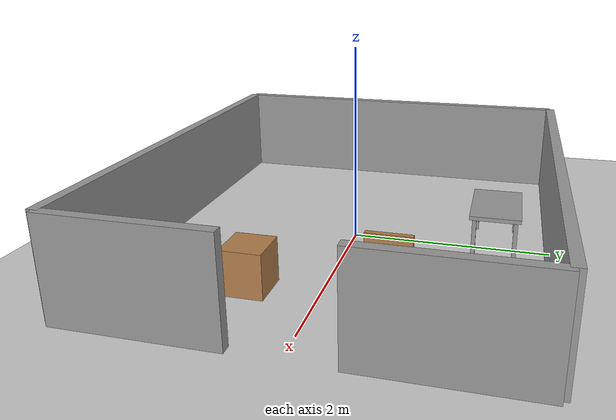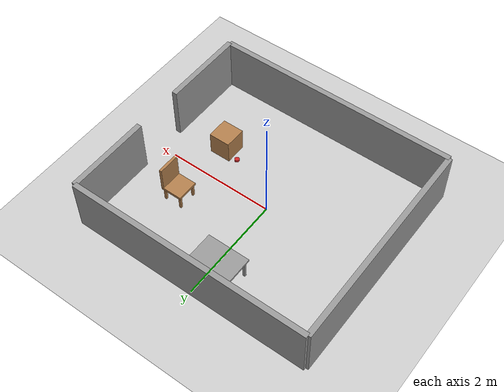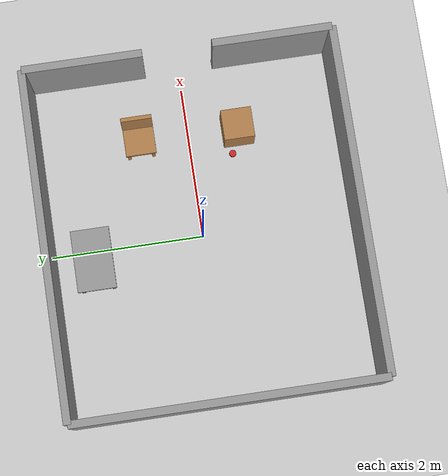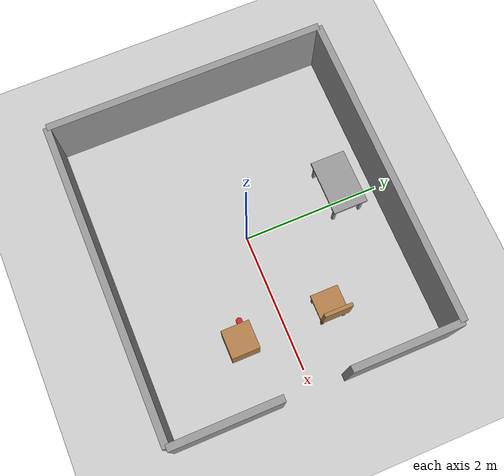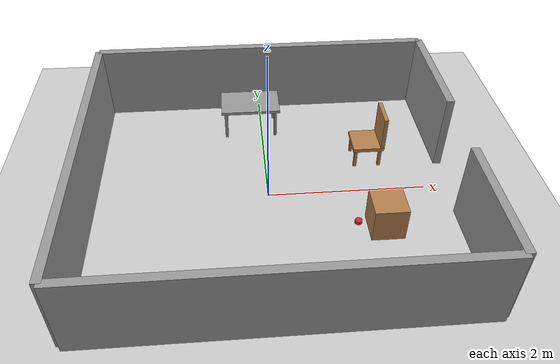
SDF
<?xml version="1.0" ?>
<sdf version="1.6">
  <world name="semantic_room">
    <include><uri>model://ground_plane</uri></include>
    <include><uri>model://sun</uri></include>

    <scene>
      <ambient>0.32 0.32 0.32 1</ambient>
      <background>0.68 0.72 0.76 1</background>
      <shadows>0</shadows>
    </scene>
    <light name="ceiling" type="point">
      <pose>0.3 0 2.4 0 0 0</pose>
      <diffuse>0.4 0.4 0.38 1</diffuse>
      <specular>0.04 0.04 0.04 1</specular>
      <attenuation>
        <range>8</range>
        <constant>0.55</constant>
        <linear>0.18</linear>
        <quadratic>0.05</quadratic>
      </attenuation>
      <cast_shadows>0</cast_shadows>
    </light>

    <physics type="ode">
      <max_step_size>0.001</max_step_size>
      <real_time_update_rate>1000</real_time_update_rate>
      <real_time_factor>1</real_time_factor>
    </physics>

    <gui fullscreen="0">
      <camera name="user_camera">
        <pose>0.2 -5.2 3.2 0 0.55 1.5708</pose>
      </camera>
    </gui>

    <model name="walls">
      <static>true</static>
      <pose>0 0 0 0 0 0</pose>
      <link name="link">
        <visual name="north"><pose>0.05 2.0 0.5 0 0 0</pose><geometry><box><size>4.5 0.1 1.0</size></box></geometry><material><script><uri>file://media/materials/scripts/gazebo.material</uri><name>Gazebo/Grey</name></script></material></visual>
        <collision name="north"><pose>0.05 2.0 0.5 0 0 0</pose><geometry><box><size>4.5 0.1 1.0</size></box></geometry></collision>
        <visual name="south"><pose>0.05 -2.0 0.5 0 0 0</pose><geometry><box><size>4.5 0.1 1.0</size></box></geometry><material><script><uri>file://media/materials/scripts/gazebo.material</uri><name>Gazebo/Grey</name></script></material></visual>
        <collision name="south"><pose>0.05 -2.0 0.5 0 0 0</pose><geometry><box><size>4.5 0.1 1.0</size></box></geometry></collision>
        <visual name="west"><pose>-2.2 0 0.5 0 0 0</pose><geometry><box><size>0.1 4.0 1.0</size></box></geometry><material><script><uri>file://media/materials/scripts/gazebo.material</uri><name>Gazebo/Grey</name></script></material></visual>
        <collision name="west"><pose>-2.2 0 0.5 0 0 0</pose><geometry><box><size>0.1 4.0 1.0</size></box></geometry></collision>
        <visual name="east_south"><pose>2.3 -1.225 0.5 0 0 0</pose><geometry><box><size>0.1 1.55 1.0</size></box></geometry><material><script><uri>file://media/materials/scripts/gazebo.material</uri><name>Gazebo/Grey</name></script></material></visual>
        <collision name="east_south"><pose>2.3 -1.225 0.5 0 0 0</pose><geometry><box><size>0.1 1.55 1.0</size></box></geometry></collision>
        <visual name="east_north"><pose>2.3 1.225 0.5 0 0 0</pose><geometry><box><size>0.1 1.55 1.0</size></box></geometry><material><script><uri>file://media/materials/scripts/gazebo.material</uri><name>Gazebo/Grey</name></script></material></visual>
        <collision name="east_north"><pose>2.3 1.225 0.5 0 0 0</pose><geometry><box><size>0.1 1.55 1.0</size></box></geometry></collision>
      </link>
    </model>

    <!-- Target chair: shares Gazebo/Wood material and footprint with the crate, distinguished by its backrest and legs. -->
    <model name="chair">
      <static>true</static>
      <pose>1.35 0.65 0 0 0 0</pose>
      <link name="link">
        <visual name="seat"><pose>0 0 0.28 0 0 0</pose><geometry><box><size>0.40 0.40 0.05</size></box></geometry><material><script><uri>file://media/materials/scripts/gazebo.material</uri><name>Gazebo/Wood</name></script></material></visual>
        <collision name="seat"><pose>0 0 0.28 0 0 0</pose><geometry><box><size>0.40 0.40 0.05</size></box></geometry></collision>
        <visual name="back"><pose>0.18 0 0.52 0 0 0</pose><geometry><box><size>0.05 0.40 0.46</size></box></geometry><material><script><uri>file://media/materials/scripts/gazebo.material</uri><name>Gazebo/Wood</name></script></material></visual>
        <collision name="back"><pose>0.18 0 0.52 0 0 0</pose><geometry><box><size>0.05 0.40 0.46</size></box></geometry></collision>
        <visual name="leg_fl"><pose>0.16 0.16 0.14 0 0 0</pose><geometry><box><size>0.04 0.04 0.28</size></box></geometry><material><script><uri>file://media/materials/scripts/gazebo.material</uri><name>Gazebo/Wood</name></script></material></visual>
        <collision name="leg_fl"><pose>0.16 0.16 0.14 0 0 0</pose><geometry><box><size>0.04 0.04 0.28</size></box></geometry></collision>
        <visual name="leg_fr"><pose>0.16 -0.16 0.14 0 0 0</pose><geometry><box><size>0.04 0.04 0.28</size></box></geometry><material><script><uri>file://media/materials/scripts/gazebo.material</uri><name>Gazebo/Wood</name></script></material></visual>
        <collision name="leg_fr"><pose>0.16 -0.16 0.14 0 0 0</pose><geometry><box><size>0.04 0.04 0.28</size></box></geometry></collision>
        <visual name="leg_bl"><pose>-0.16 0.16 0.14 0 0 0</pose><geometry><box><size>0.04 0.04 0.28</size></box></geometry><material><script><uri>file://media/materials/scripts/gazebo.material</uri><name>Gazebo/Wood</name></script></material></visual>
        <collision name="leg_bl"><pose>-0.16 0.16 0.14 0 0 0</pose><geometry><box><size>0.04 0.04 0.28</size></box></geometry></collision>
        <visual name="leg_br"><pose>-0.16 -0.16 0.14 0 0 0</pose><geometry><box><size>0.04 0.04 0.28</size></box></geometry><material><script><uri>file://media/materials/scripts/gazebo.material</uri><name>Gazebo/Wood</name></script></material></visual>
        <collision name="leg_br"><pose>-0.16 -0.16 0.14 0 0 0</pose><geometry><box><size>0.04 0.04 0.28</size></box></geometry></collision>
      </link>
    </model>

    <!-- Decoy wooden crate: identical wood texture and width to the chair, but not sittable. -->
    <model name="crate">
      <static>true</static>
      <pose>1.35 -0.65 0.22 0 0 0</pose>
      <link name="link">
        <visual name="body"><geometry><box><size>0.40 0.40 0.44</size></box></geometry><material><script><uri>file://media/materials/scripts/gazebo.material</uri><name>Gazebo/Wood</name></script></material></visual>
        <collision name="body"><geometry><box><size>0.40 0.40 0.44</size></box></geometry></collision>
      </link>
    </model>

    <!-- Low floor obstacle (height 0.04 m): sits below the 2D LiDAR scan plane (0.12 m) and requires visual detection. -->
    <model name="floor_object">
      <static>true</static>
      <pose>1.05 -0.55 0.02 0 0 0</pose>
      <link name="link">
        <visual name="body"><geometry><cylinder><radius>0.045</radius><length>0.04</length></cylinder></geometry><material><script><uri>file://media/materials/scripts/gazebo.material</uri><name>Gazebo/Red</name></script></material></visual>
        <collision name="body"><geometry><cylinder><radius>0.045</radius><length>0.04</length></cylinder></geometry></collision>
      </link>
    </model>

    <!-- Table with clearance underneath that the robot should avoid entering. -->
    <model name="table">
      <static>true</static>
      <pose>-0.15 1.45 0 0 0 0</pose>
      <link name="link">
        <visual name="top"><pose>0 0 0.42 0 0 0</pose><geometry><box><size>0.80 0.50 0.04</size></box></geometry><material><script><uri>file://media/materials/scripts/gazebo.material</uri><name>Gazebo/Grey</name></script></material></visual>
        <collision name="top"><pose>0 0 0.42 0 0 0</pose><geometry><box><size>0.80 0.50 0.04</size></box></geometry></collision>
        <visual name="leg_fl"><pose>0.34 0.20 0.20 0 0 0</pose><geometry><box><size>0.04 0.04 0.40</size></box></geometry><material><script><uri>file://media/materials/scripts/gazebo.material</uri><name>Gazebo/Grey</name></script></material></visual>
        <collision name="leg_fl"><pose>0.34 0.20 0.20 0 0 0</pose><geometry><box><size>0.04 0.04 0.40</size></box></geometry></collision>
        <visual name="leg_fr"><pose>0.34 -0.20 0.20 0 0 0</pose><geometry><box><size>0.04 0.04 0.40</size></box></geometry><material><script><uri>file://media/materials/scripts/gazebo.material</uri><name>Gazebo/Grey</name></script></material></visual>
        <collision name="leg_fr"><pose>0.34 -0.20 0.20 0 0 0</pose><geometry><box><size>0.04 0.04 0.40</size></box></geometry></collision>
        <visual name="leg_bl"><pose>-0.34 0.20 0.20 0 0 0</pose><geometry><box><size>0.04 0.04 0.40</size></box></geometry><material><script><uri>file://media/materials/scripts/gazebo.material</uri><name>Gazebo/Grey</name></script></material></visual>
        <collision name="leg_bl"><pose>-0.34 0.20 0.20 0 0 0</pose><geometry><box><size>0.04 0.04 0.40</size></box></geometry></collision>
        <visual name="leg_br"><pose>-0.34 -0.20 0.20 0 0 0</pose><geometry><box><size>0.04 0.04 0.40</size></box></geometry><material><script><uri>file://media/materials/scripts/gazebo.material</uri><name>Gazebo/Grey</name></script></material></visual>
        <collision name="leg_br"><pose>-0.34 -0.20 0.20 0 0 0</pose><geometry><box><size>0.04 0.04 0.40</size></box></geometry></collision>
      </link>
    </model>

  </world>
</sdf>
